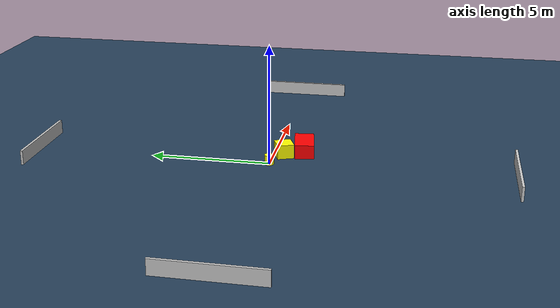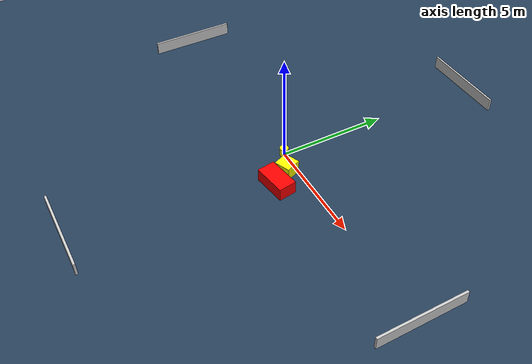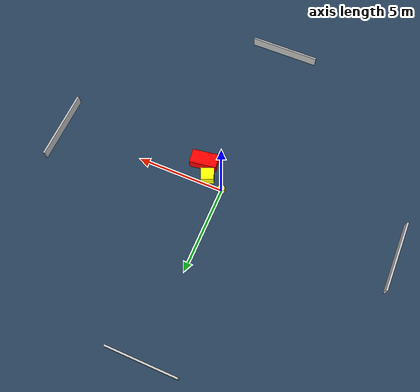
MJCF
<?xml version="1.0" ?>
<mujoco model="generated_environment">
  <option timestep="0.01" integrator="RK4" cone="elliptic"/>
  <default>
    <geom density="1"/>
  </default>
  <asset>
    <texture builtin="gradient" height="3072" name="skybox" rgb1="0.3 0.5 0.7" rgb2="0 0 0" type="skybox" width="512"/>
    <texture builtin="checker" height="300" name="groundplane" rgb1="0.2 0.3 0.4" rgb2="0.1 0.2 0.3" type="2d" width="300"/>
    <material name="groundplane" reflectance="0.2" texrepeat="5 5" texture="groundplane"/>
  </asset>
  <worldbody>
    <light dir="0 0 -1" directional="true" pos="0 0 1.5"/>
    <geom condim="3" friction="0.5 0.005 0.001" material="groundplane" name="floor" pos="0 0 0" size="0 0 0.05" type="plane"/>
    <body name="walls">
      <geom name="wall_1" condim="4" pos="-10.0 0.0 0.3" rgba="0.800000011920929 0.800000011920929 0.800000011920929 1.0" size="0.05 2.0 0.3" type="box"/>
      <geom name="wall_2" condim="4" pos="10.0 0.0 0.3" rgba="0.800000011920929 0.800000011920929 0.800000011920929 1.0" size="0.05 2.0 0.3" type="box"/>
      <geom name="wall_3" condim="4" pos="0.0 -10.0 0.3" rgba="0.800000011920929 0.800000011920929 0.800000011920929 1.0" size="2.0 0.05 0.3" type="box"/>
      <geom name="wall_4" condim="4" pos="0.0 10.0 0.3" rgba="0.800000011920929 0.800000011920929 0.800000011920929 1.0" size="2.0 0.05 0.3" type="box"/>
    </body>
    <body name="robot">
      <joint name="joint_x" type="slide" pos="0 0 0" axis="1 0 0"/>
      <joint name="joint_y" type="slide" pos="0 0 0" axis="0 1 0"/>
      <geom name="robot" type="cylinder" pos="0.0 0.0 0.2" size="0.2 0.2 0.0" mass="5.0" friction="1.0 0.005 0.0001" condim="4" rgba="1.0 1.0 0.0 1.0"/>
    </body>
    <body name="obstacle_1_movable">
      <geom name="obstacle_1_movable" condim="4" pos="1.024001147777975 -0.4352694377969741 0.3" euler="0 0 22.380004859601854" friction="0.0 0.005 0.001" rgba="1.0 1.0 0.0 1.0" size="0.3685655487762607 0.35758127192669803 0.3" type="box" mass="0.1"/>
      <joint type="free"/>
    </body>
    <body name="obstacle_2_static">
      <geom name="obstacle_2_static" condim="4" pos="1.5507600064909408 -1.221084704487183 0.3" euler="0 0 278.7438948719277" friction="0.0 0.005 0.001" rgba="1.0 0.0 0.0 1.0" size="0.4089311320344454 0.7670105850700923 0.3" type="box"/>
    </body>
  </worldbody>
  <actuator>
    <motor name="actuator_x" joint="joint_x" gear="1" ctrlrange="-1 1"/>
    <motor name="actuator_y" joint="joint_y" gear="1" ctrlrange="-1 1"/>
  </actuator>
</mujoco>
